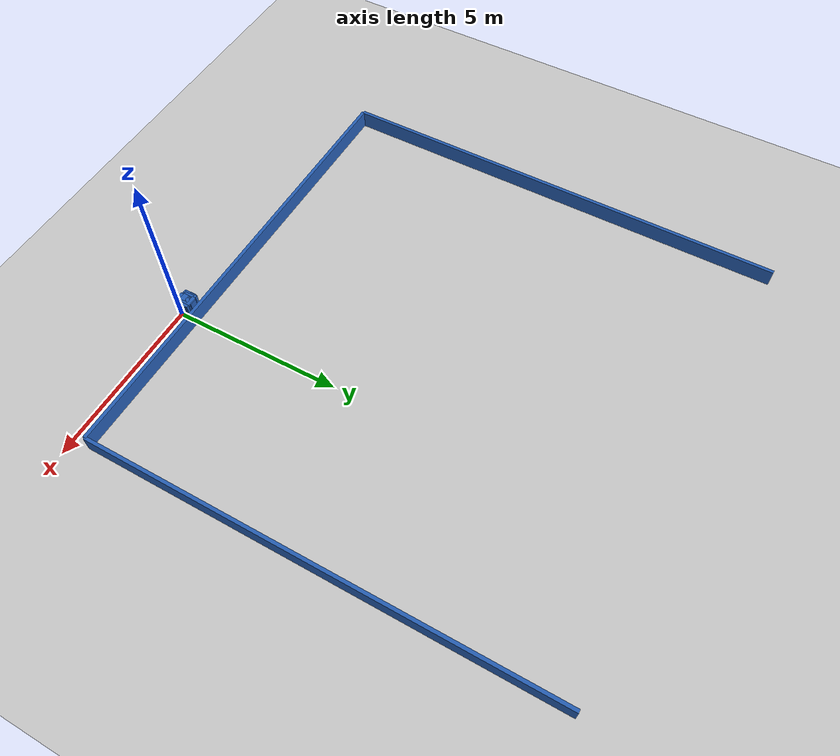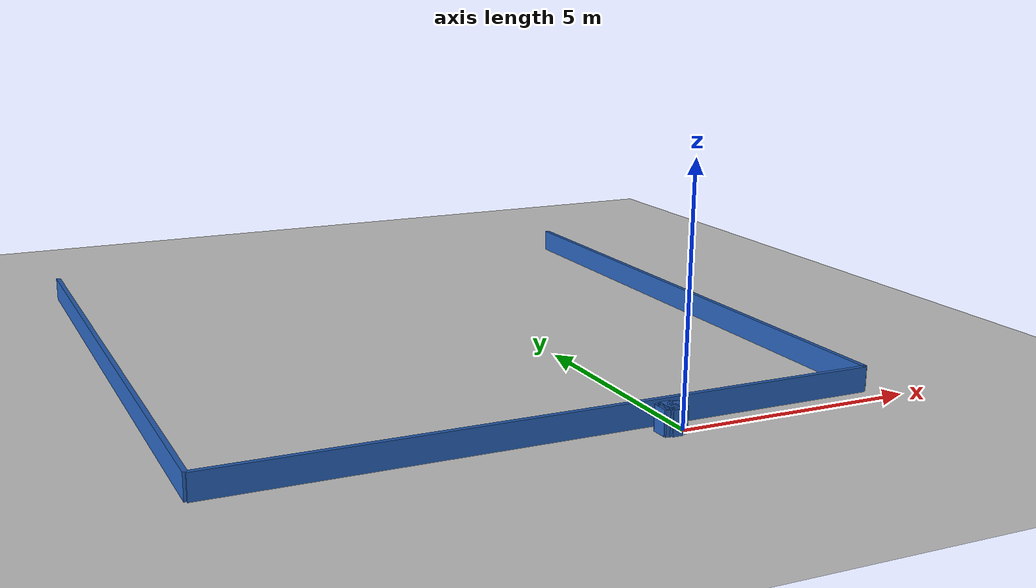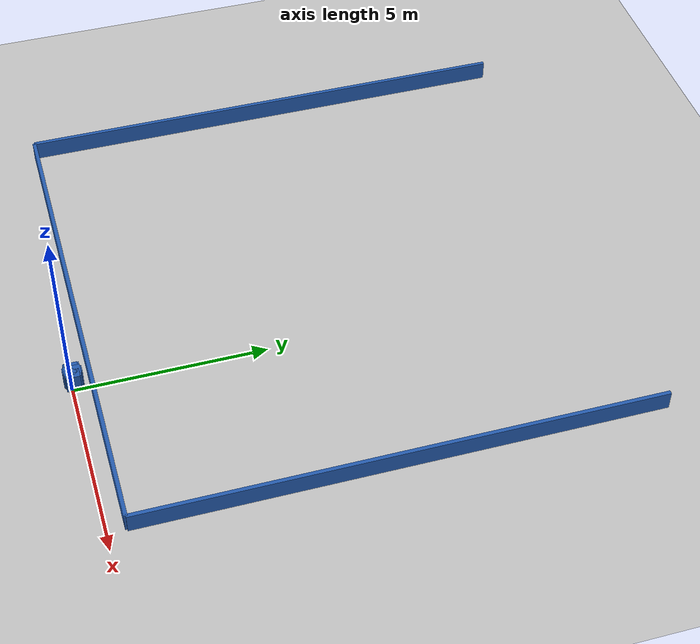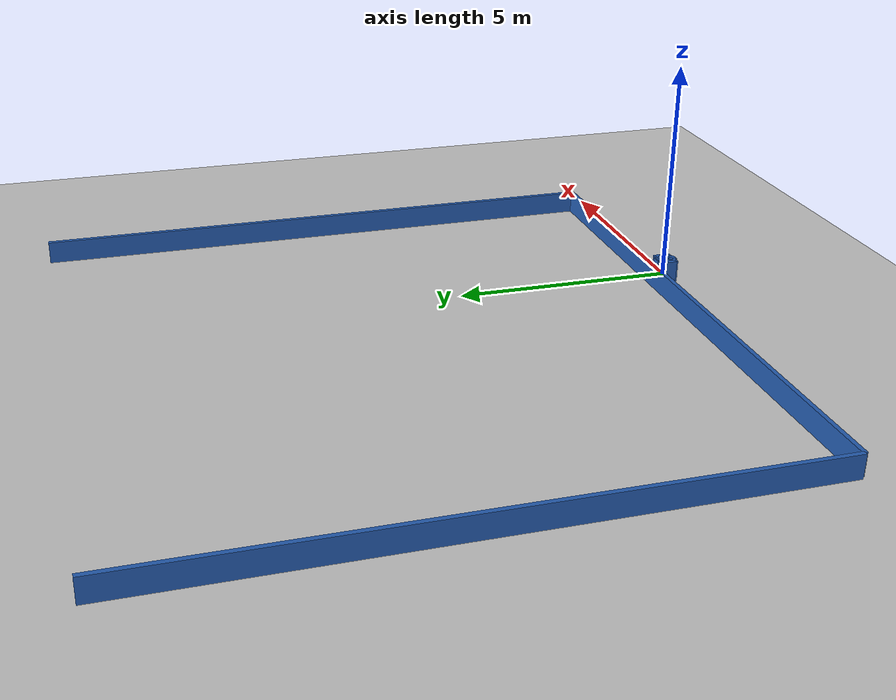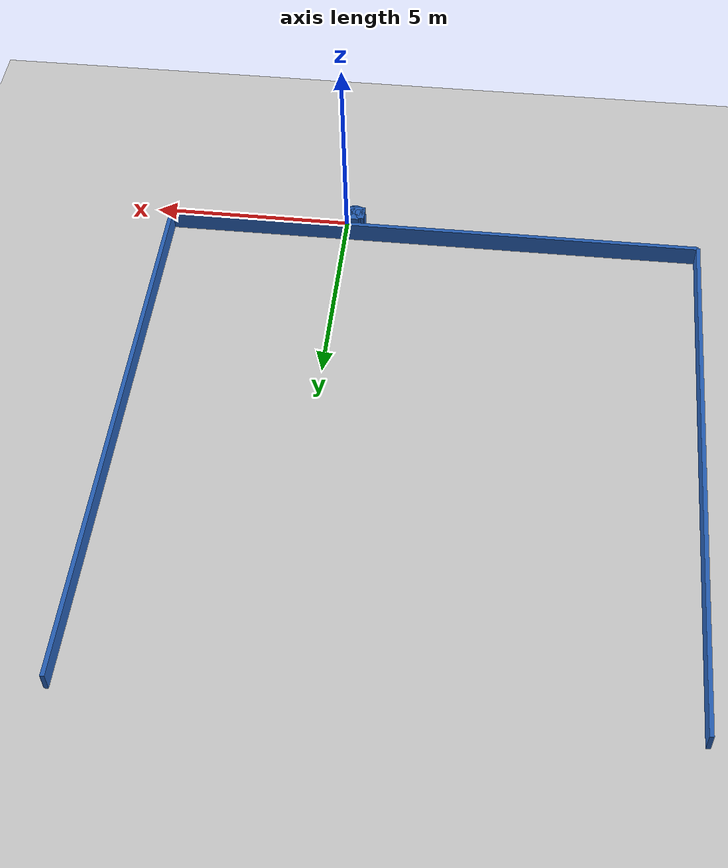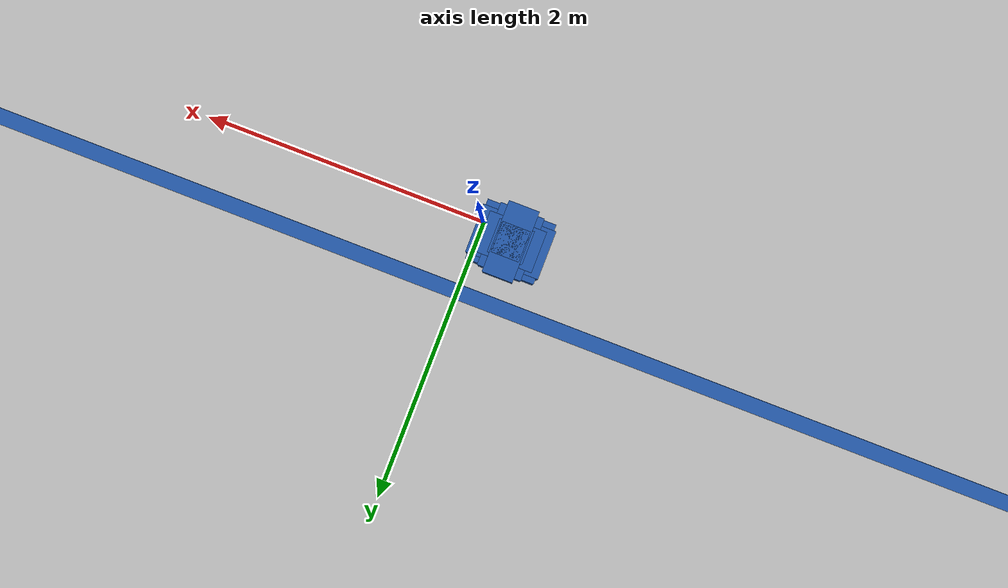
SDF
<?xml version="1.0" ?>
    <sdf version="1.5">
      <world name="default">
        <!-- A global light source -->
        <include>
          <uri>model://sun</uri>
        </include>
        <!-- A ground plane -->
        <include>
          <uri>model://ground_plane</uri>
        </include>

    <model name='libopen_space_final_T2B_118_43'>
      <static>1</static>
      <pose frame=''>-0.225000 0.075000 0.000000 0.000000 0.000000 0.000000</pose>
      <link name='link'>
        <inertial>
          <mass>1</mass>
          <inertia>
            <ixx>0.145833</ixx>
            <ixy>0</ixy>
            <ixz>0</ixz>
            <iyy>0.145833</iyy>
            <iyz>0</iyz>
            <izz>0.125</izz>
          </inertia>
        </inertial>
        <collision name='collision'>
          <geometry>
            <box>
              <size>0.20 0.19 1</size>
            </box>
          </geometry>
          <max_contacts>10</max_contacts>
          <surface>
            <contact>
              <ode/>
            </contact>
            <bounce/>
            <friction>
              <torsional>
                <ode/>
              </torsional>
              <ode/>
            </friction>
          </surface>
        </collision>
        <visual name='visual'>
          <geometry>
            <box>
              <size>0.20 0.19 1</size>
            </box>
          </geometry>
	    <material>
              <ambient>0.152000 0.379000 0.720000 1</ambient>
	      <diffuse>0.152000 0.379000 0.720000 1</diffuse>
          </material>
          <material>
            <script>
              <name>Gazebo/Grey</name>
              <uri>file://media/materials/scripts/gazebo.material</uri>
            </script>
          </material>
        </visual>
        <self_collide>0</self_collide>
        <kinematic>0</kinematic>
        <gravity>1</gravity>
      </link>
      <plugin name='libopen_space_final_T2B_118_43' filename='libopen_space_final_T2B_118_43.so'/>
    </model>

    <model name='libopen_space_final_T2B_141_33'>
      <static>1</static>
      <pose frame=''>-0.225000 0.075000 0.000000 0.000000 0.000000 0.000000</pose>
      <link name='link'>
        <inertial>
          <mass>1</mass>
          <inertia>
            <ixx>0.145833</ixx>
            <ixy>0</ixy>
            <ixz>0</ixz>
            <iyy>0.145833</iyy>
            <iyz>0</iyz>
            <izz>0.125</izz>
          </inertia>
        </inertial>
        <collision name='collision'>
          <geometry>
            <box>
              <size>0.19 0.21 1</size>
            </box>
          </geometry>
          <max_contacts>10</max_contacts>
          <surface>
            <contact>
              <ode/>
            </contact>
            <bounce/>
            <friction>
              <torsional>
                <ode/>
              </torsional>
              <ode/>
            </friction>
          </surface>
        </collision>
        <visual name='visual'>
          <geometry>
            <box>
              <size>0.19 0.21 1</size>
            </box>
          </geometry>
	    <material>
              <ambient>0.152000 0.379000 0.720000 1</ambient>
	      <diffuse>0.152000 0.379000 0.720000 1</diffuse>
          </material>
          <material>
            <script>
              <name>Gazebo/Grey</name>
              <uri>file://media/materials/scripts/gazebo.material</uri>
            </script>
          </material>
        </visual>
        <self_collide>0</self_collide>
        <kinematic>0</kinematic>
        <gravity>1</gravity>
      </link>
      <plugin name='libopen_space_final_T2B_141_33' filename='libopen_space_final_T2B_141_33.so'/>
    </model>

    <model name='libopen_space_final_T2B_123_13'>
      <static>1</static>
      <pose frame=''>-0.225000 0.075000 0.000000 0.000000 0.000000 0.000000</pose>
      <link name='link'>
        <inertial>
          <mass>1</mass>
          <inertia>
            <ixx>0.145833</ixx>
            <ixy>0</ixy>
            <ixz>0</ixz>
            <iyy>0.145833</iyy>
            <iyz>0</iyz>
            <izz>0.125</izz>
          </inertia>
        </inertial>
        <collision name='collision'>
          <geometry>
            <box>
              <size>0.21 0.49 1</size>
            </box>
          </geometry>
          <max_contacts>10</max_contacts>
          <surface>
            <contact>
              <ode/>
            </contact>
            <bounce/>
            <friction>
              <torsional>
                <ode/>
              </torsional>
              <ode/>
            </friction>
          </surface>
        </collision>
        <visual name='visual'>
          <geometry>
            <box>
              <size>0.21 0.49 1</size>
            </box>
          </geometry>
	    <material>
              <ambient>0.152000 0.379000 0.720000 1</ambient>
	      <diffuse>0.152000 0.379000 0.720000 1</diffuse>
          </material>
          <material>
            <script>
              <name>Gazebo/Grey</name>
              <uri>file://media/materials/scripts/gazebo.material</uri>
            </script>
          </material>
        </visual>
        <self_collide>0</self_collide>
        <kinematic>0</kinematic>
        <gravity>1</gravity>
      </link>
      <plugin name='libopen_space_final_T2B_123_13' filename='libopen_space_final_T2B_123_13.so'/>
    </model>

    <model name='libopen_space_final_T2B_67_46'>
      <static>1</static>
      <pose frame=''>-0.225000 0.075000 0.000000 0.000000 0.000000 0.000000</pose>
      <link name='link'>
        <inertial>
          <mass>1</mass>
          <inertia>
            <ixx>0.145833</ixx>
            <ixy>0</ixy>
            <ixz>0</ixz>
            <iyy>0.145833</iyy>
            <iyz>0</iyz>
            <izz>0.125</izz>
          </inertia>
        </inertial>
        <collision name='collision'>
          <geometry>
            <box>
              <size>0.24 0.23 1</size>
            </box>
          </geometry>
          <max_contacts>10</max_contacts>
          <surface>
            <contact>
              <ode/>
            </contact>
            <bounce/>
            <friction>
              <torsional>
                <ode/>
              </torsional>
              <ode/>
            </friction>
          </surface>
        </collision>
        <visual name='visual'>
          <geometry>
            <box>
              <size>0.24 0.23 1</size>
            </box>
          </geometry>
	    <material>
              <ambient>0.152000 0.379000 0.720000 1</ambient>
	      <diffuse>0.152000 0.379000 0.720000 1</diffuse>
          </material>
          <material>
            <script>
              <name>Gazebo/Grey</name>
              <uri>file://media/materials/scripts/gazebo.material</uri>
            </script>
          </material>
        </visual>
        <self_collide>0</self_collide>
        <kinematic>0</kinematic>
        <gravity>1</gravity>
      </link>
      <plugin name='libopen_space_final_T2B_67_46' filename='libopen_space_final_T2B_67_46.so'/>
    </model>

    <model name='libopen_space_final_T2B_105_8'>
      <static>1</static>
      <pose frame=''>-0.225000 0.075000 0.000000 0.000000 0.000000 0.000000</pose>
      <link name='link'>
        <inertial>
          <mass>1</mass>
          <inertia>
            <ixx>0.145833</ixx>
            <ixy>0</ixy>
            <ixz>0</ixz>
            <iyy>0.145833</iyy>
            <iyz>0</iyz>
            <izz>0.125</izz>
          </inertia>
        </inertial>
        <collision name='collision'>
          <geometry>
            <box>
              <size>0.39 0.28 1</size>
            </box>
          </geometry>
          <max_contacts>10</max_contacts>
          <surface>
            <contact>
              <ode/>
            </contact>
            <bounce/>
            <friction>
              <torsional>
                <ode/>
              </torsional>
              <ode/>
            </friction>
          </surface>
        </collision>
        <visual name='visual'>
          <geometry>
            <box>
              <size>0.39 0.28 1</size>
            </box>
          </geometry>
	    <material>
              <ambient>0.152000 0.379000 0.720000 1</ambient>
	      <diffuse>0.152000 0.379000 0.720000 1</diffuse>
          </material>
          <material>
            <script>
              <name>Gazebo/Grey</name>
              <uri>file://media/materials/scripts/gazebo.material</uri>
            </script>
          </material>
        </visual>
        <self_collide>0</self_collide>
        <kinematic>0</kinematic>
        <gravity>1</gravity>
      </link>
      <plugin name='libopen_space_final_T2B_105_8' filename='libopen_space_final_T2B_105_8.so'/>
    </model>

    <model name='libopen_space_final_T2B_84_5'>
      <static>1</static>
      <pose frame=''>-0.225000 0.075000 0.000000 0.000000 0.000000 0.000000</pose>
      <link name='link'>
        <inertial>
          <mass>1</mass>
          <inertia>
            <ixx>0.145833</ixx>
            <ixy>0</ixy>
            <ixz>0</ixz>
            <iyy>0.145833</iyy>
            <iyz>0</iyz>
            <izz>0.125</izz>
          </inertia>
        </inertial>
        <collision name='collision'>
          <geometry>
            <box>
              <size>0.30 0.43 1</size>
            </box>
          </geometry>
          <max_contacts>10</max_contacts>
          <surface>
            <contact>
              <ode/>
            </contact>
            <bounce/>
            <friction>
              <torsional>
                <ode/>
              </torsional>
              <ode/>
            </friction>
          </surface>
        </collision>
        <visual name='visual'>
          <geometry>
            <box>
              <size>0.30 0.43 1</size>
            </box>
          </geometry>
	    <material>
              <ambient>0.152000 0.379000 0.720000 1</ambient>
	      <diffuse>0.152000 0.379000 0.720000 1</diffuse>
          </material>
          <material>
            <script>
              <name>Gazebo/Grey</name>
              <uri>file://media/materials/scripts/gazebo.material</uri>
            </script>
          </material>
        </visual>
        <self_collide>0</self_collide>
        <kinematic>0</kinematic>
        <gravity>1</gravity>
      </link>
      <plugin name='libopen_space_final_T2B_84_5' filename='libopen_space_final_T2B_84_5.so'/>
    </model>

    <model name='libopen_space_final_T2B_94_31'>
      <static>1</static>
      <pose frame=''>-0.225000 0.075000 0.000000 0.000000 0.000000 0.000000</pose>
      <link name='link'>
        <inertial>
          <mass>1</mass>
          <inertia>
            <ixx>0.145833</ixx>
            <ixy>0</ixy>
            <ixz>0</ixz>
            <iyy>0.145833</iyy>
            <iyz>0</iyz>
            <izz>0.125</izz>
          </inertia>
        </inertial>
        <collision name='collision'>
          <geometry>
            <box>
              <size>0.15 0.31 1</size>
            </box>
          </geometry>
          <max_contacts>10</max_contacts>
          <surface>
            <contact>
              <ode/>
            </contact>
            <bounce/>
            <friction>
              <torsional>
                <ode/>
              </torsional>
              <ode/>
            </friction>
          </surface>
        </collision>
        <visual name='visual'>
          <geometry>
            <box>
              <size>0.15 0.31 1</size>
            </box>
          </geometry>
	    <material>
              <ambient>0.152000 0.379000 0.720000 1</ambient>
	      <diffuse>0.152000 0.379000 0.720000 1</diffuse>
          </material>
          <material>
            <script>
              <name>Gazebo/Grey</name>
              <uri>file://media/materials/scripts/gazebo.material</uri>
            </script>
          </material>
        </visual>
        <self_collide>0</self_collide>
        <kinematic>0</kinematic>
        <gravity>1</gravity>
      </link>
      <plugin name='libopen_space_final_T2B_94_31' filename='libopen_space_final_T2B_94_31.so'/>
    </model>

    <model name='libopen_space_final_T2B_90_15'>
      <static>1</static>
      <pose frame=''>-0.225000 0.075000 0.000000 0.000000 0.000000 0.000000</pose>
      <link name='link'>
        <inertial>
          <mass>1</mass>
          <inertia>
            <ixx>0.145833</ixx>
            <ixy>0</ixy>
            <ixz>0</ixz>
            <iyy>0.145833</iyy>
            <iyz>0</iyz>
            <izz>0.125</izz>
          </inertia>
        </inertial>
        <collision name='collision'>
          <geometry>
            <box>
              <size>0.12 0.20 1</size>
            </box>
          </geometry>
          <max_contacts>10</max_contacts>
          <surface>
            <contact>
              <ode/>
            </contact>
            <bounce/>
            <friction>
              <torsional>
                <ode/>
              </torsional>
              <ode/>
            </friction>
          </surface>
        </collision>
        <visual name='visual'>
          <geometry>
            <box>
              <size>0.12 0.20 1</size>
            </box>
          </geometry>
	    <material>
              <ambient>0.152000 0.379000 0.720000 1</ambient>
	      <diffuse>0.152000 0.379000 0.720000 1</diffuse>
          </material>
          <material>
            <script>
              <name>Gazebo/Grey</name>
              <uri>file://media/materials/scripts/gazebo.material</uri>
            </script>
          </material>
        </visual>
        <self_collide>0</self_collide>
        <kinematic>0</kinematic>
        <gravity>1</gravity>
      </link>
      <plugin name='libopen_space_final_T2B_90_15' filename='libopen_space_final_T2B_90_15.so'/>
    </model>

    <model name='libopen_space_final_T2B_112_98'>
      <static>1</static>
      <pose frame=''>-0.225000 0.075000 0.000000 0.000000 0.000000 0.000000</pose>
      <link name='link'>
        <inertial>
          <mass>1</mass>
          <inertia>
            <ixx>0.145833</ixx>
            <ixy>0</ixy>
            <ixz>0</ixz>
            <iyy>0.145833</iyy>
            <iyz>0</iyz>
            <izz>0.125</izz>
          </inertia>
        </inertial>
        <collision name='collision'>
          <geometry>
            <box>
              <size>0.20 0.25 1</size>
            </box>
          </geometry>
          <max_contacts>10</max_contacts>
          <surface>
            <contact>
              <ode/>
            </contact>
            <bounce/>
            <friction>
              <torsional>
                <ode/>
              </torsional>
              <ode/>
            </friction>
          </surface>
        </collision>
        <visual name='visual'>
          <geometry>
            <box>
              <size>0.20 0.25 1</size>
            </box>
          </geometry>
	    <material>
              <ambient>0.152000 0.379000 0.720000 1</ambient>
	      <diffuse>0.152000 0.379000 0.720000 1</diffuse>
          </material>
          <material>
            <script>
              <name>Gazebo/Grey</name>
              <uri>file://media/materials/scripts/gazebo.material</uri>
            </script>
          </material>
        </visual>
        <self_collide>0</self_collide>
        <kinematic>0</kinematic>
        <gravity>1</gravity>
      </link>
      <plugin name='libopen_space_final_T2B_112_98' filename='libopen_space_final_T2B_112_98.so'/>
    </model>

    <model name='libopen_space_final_T2B_52_49'>
      <static>1</static>
      <pose frame=''>-0.225000 0.075000 0.000000 0.000000 0.000000 0.000000</pose>
      <link name='link'>
        <inertial>
          <mass>1</mass>
          <inertia>
            <ixx>0.145833</ixx>
            <ixy>0</ixy>
            <ixz>0</ixz>
            <iyy>0.145833</iyy>
            <iyz>0</iyz>
            <izz>0.125</izz>
          </inertia>
        </inertial>
        <collision name='collision'>
          <geometry>
            <box>
              <size>0.23 0.23 1</size>
            </box>
          </geometry>
          <max_contacts>10</max_contacts>
          <surface>
            <contact>
              <ode/>
            </contact>
            <bounce/>
            <friction>
              <torsional>
                <ode/>
              </torsional>
              <ode/>
            </friction>
          </surface>
        </collision>
        <visual name='visual'>
          <geometry>
            <box>
              <size>0.23 0.23 1</size>
            </box>
          </geometry>
	    <material>
              <ambient>0.152000 0.379000 0.720000 1</ambient>
	      <diffuse>0.152000 0.379000 0.720000 1</diffuse>
          </material>
          <material>
            <script>
              <name>Gazebo/Grey</name>
              <uri>file://media/materials/scripts/gazebo.material</uri>
            </script>
          </material>
        </visual>
        <self_collide>0</self_collide>
        <kinematic>0</kinematic>
        <gravity>1</gravity>
      </link>
      <plugin name='libopen_space_final_T2B_52_49' filename='libopen_space_final_T2B_52_49.so'/>
    </model>

    <model name='libopen_space_final_T2B_148_40'>
      <static>1</static>
      <pose frame=''>-0.225000 0.075000 0.000000 0.000000 0.000000 0.000000</pose>
      <link name='link'>
        <inertial>
          <mass>1</mass>
          <inertia>
            <ixx>0.145833</ixx>
            <ixy>0</ixy>
            <ixz>0</ixz>
            <iyy>0.145833</iyy>
            <iyz>0</iyz>
            <izz>0.125</izz>
          </inertia>
        </inertial>
        <collision name='collision'>
          <geometry>
            <box>
              <size>0.50 0.33 1</size>
            </box>
          </geometry>
          <max_contacts>10</max_contacts>
          <surface>
            <contact>
              <ode/>
            </contact>
            <bounce/>
            <friction>
              <torsional>
                <ode/>
              </torsional>
              <ode/>
            </friction>
          </surface>
        </collision>
        <visual name='visual'>
          <geometry>
            <box>
              <size>0.50 0.33 1</size>
            </box>
          </geometry>
	    <material>
              <ambient>0.152000 0.379000 0.720000 1</ambient>
	      <diffuse>0.152000 0.379000 0.720000 1</diffuse>
          </material>
          <material>
            <script>
              <name>Gazebo/Grey</name>
              <uri>file://media/materials/scripts/gazebo.material</uri>
            </script>
          </material>
        </visual>
        <self_collide>0</self_collide>
        <kinematic>0</kinematic>
        <gravity>1</gravity>
      </link>
      <plugin name='libopen_space_final_T2B_148_40' filename='libopen_space_final_T2B_148_40.so'/>
    </model>

    <model name='libopen_space_final_T2B_100_36'>
      <static>1</static>
      <pose frame=''>-0.225000 0.075000 0.000000 0.000000 0.000000 0.000000</pose>
      <link name='link'>
        <inertial>
          <mass>1</mass>
          <inertia>
            <ixx>0.145833</ixx>
            <ixy>0</ixy>
            <ixz>0</ixz>
            <iyy>0.145833</iyy>
            <iyz>0</iyz>
            <izz>0.125</izz>
          </inertia>
        </inertial>
        <collision name='collision'>
          <geometry>
            <box>
              <size>0.25 0.31 1</size>
            </box>
          </geometry>
          <max_contacts>10</max_contacts>
          <surface>
            <contact>
              <ode/>
            </contact>
            <bounce/>
            <friction>
              <torsional>
                <ode/>
              </torsional>
              <ode/>
            </friction>
          </surface>
        </collision>
        <visual name='visual'>
          <geometry>
            <box>
              <size>0.25 0.31 1</size>
            </box>
          </geometry>
	    <material>
              <ambient>0.152000 0.379000 0.720000 1</ambient>
	      <diffuse>0.152000 0.379000 0.720000 1</diffuse>
          </material>
          <material>
            <script>
              <name>Gazebo/Grey</name>
              <uri>file://media/materials/scripts/gazebo.material</uri>
            </script>
          </material>
        </visual>
        <self_collide>0</self_collide>
        <kinematic>0</kinematic>
        <gravity>1</gravity>
      </link>
      <plugin name='libopen_space_final_T2B_100_36' filename='libopen_space_final_T2B_100_36.so'/>
    </model>

    <model name='libopen_space_final_T2B_83_17'>
      <static>1</static>
      <pose frame=''>-0.225000 0.075000 0.000000 0.000000 0.000000 0.000000</pose>
      <link name='link'>
        <inertial>
          <mass>1</mass>
          <inertia>
            <ixx>0.145833</ixx>
            <ixy>0</ixy>
            <ixz>0</ixz>
            <iyy>0.145833</iyy>
            <iyz>0</iyz>
            <izz>0.125</izz>
          </inertia>
        </inertial>
        <collision name='collision'>
          <geometry>
            <box>
              <size>0.47 0.41 1</size>
            </box>
          </geometry>
          <max_contacts>10</max_contacts>
          <surface>
            <contact>
              <ode/>
            </contact>
            <bounce/>
            <friction>
              <torsional>
                <ode/>
              </torsional>
              <ode/>
            </friction>
          </surface>
        </collision>
        <visual name='visual'>
          <geometry>
            <box>
              <size>0.47 0.41 1</size>
            </box>
          </geometry>
	    <material>
              <ambient>0.152000 0.379000 0.720000 1</ambient>
	      <diffuse>0.152000 0.379000 0.720000 1</diffuse>
          </material>
          <material>
            <script>
              <name>Gazebo/Grey</name>
              <uri>file://media/materials/scripts/gazebo.material</uri>
            </script>
          </material>
        </visual>
        <self_collide>0</self_collide>
        <kinematic>0</kinematic>
        <gravity>1</gravity>
      </link>
      <plugin name='libopen_space_final_T2B_83_17' filename='libopen_space_final_T2B_83_17.so'/>
    </model>

        <model name='bottom_wall'>
          <static>1</static>
          <pose frame=''>-2.25 0.5 0.000000 0.000000 0.000000 1.57079632</pose>
          <link name='link'>
            <inertial>
            <mass>1</mass>
            <inertia>
              <ixx>0.145833</ixx>
              <ixy>0</ixy>
              <ixz>0</ixz>
              <iyy>0.145833</iyy>
              <iyz>0</iyz>
              <izz>0.125</izz>
            </inertia>
            </inertial>
            <collision name='collision'>
            <geometry>
              <box>
              <size>0.1 13.5 1</size>
              </box>
            </geometry>
            <max_contacts>10</max_contacts>
            <surface>
              <contact>
              <ode/>
              </contact>
              <bounce/>
              <friction>
              <torsional>
                <ode/>
              </torsional>
              <ode/>
              </friction>
            </surface>
            </collision>
            <visual name='visual'>
            <geometry>
              <box>
              <size>0.1 13.5 1</size>
              </box>
            </geometry>
            <material>
              <ambient>0.152000 0.379000 0.720000 1</ambient>
            <diffuse>0.152000 0.379000 0.720000 1</diffuse>
            </material>
            <material>
              <script>
              <name>Gazebo/Grey</name>
              <uri>file://media/materials/scripts/gazebo.material</uri>
              </script>
            </material>
            </visual>
            <self_collide>0</self_collide>
            <kinematic>0</kinematic>
            <gravity>1</gravity>
          </link>
        </model>

        <model name='left_wall'>
          <static>1</static>
          <pose frame=''>-9 7.25 0.000000 0.000000 0.000000 0.000000</pose>
          <link name='link'>
            <inertial>
            <mass>1</mass>
            <inertia>
              <ixx>0.145833</ixx>
              <ixy>0</ixy>
              <ixz>0</ixz>
              <iyy>0.145833</iyy>
              <iyz>0</iyz>
              <izz>0.125</izz>
            </inertia>
            </inertial>
            <collision name='collision'>
            <geometry>
              <box>
              <size>0.1 13.5 1</size>
              </box>
            </geometry>
            <max_contacts>10</max_contacts>
            <surface>
              <contact>
              <ode/>
              </contact>
              <bounce/>
              <friction>
              <torsional>
                <ode/>
              </torsional>
              <ode/>
              </friction>
            </surface>
            </collision>
            <visual name='visual'>
            <geometry>
              <box>
              <size>0.1 13.5 1</size>
              </box>
            </geometry>
            <material>
              <ambient>0.152000 0.379000 0.720000 1</ambient>
            <diffuse>0.152000 0.379000 0.720000 1</diffuse>
            </material>
            <material>
              <script>
              <name>Gazebo/Grey</name>
              <uri>file://media/materials/scripts/gazebo.material</uri>
              </script>
            </material>
            </visual>
            <self_collide>0</self_collide>
            <kinematic>0</kinematic>
            <gravity>1</gravity>
          </link>
        </model>

        <model name='right_wall'>
          <static>1</static>
          <pose frame=''>4.5 7.25 0.000000 0.000000 0.000000 0.000000</pose>
          <link name='link'>
            <inertial>
            <mass>1</mass>
            <inertia>
              <ixx>0.145833</ixx>
              <ixy>0</ixy>
              <ixz>0</ixz>
              <iyy>0.145833</iyy>
              <iyz>0</iyz>
              <izz>0.125</izz>
            </inertia>
            </inertial>
            <collision name='collision'>
            <geometry>
              <box>
              <size>0.1 13.5 1</size>
              </box>
            </geometry>
            <max_contacts>10</max_contacts>
            <surface>
              <contact>
              <ode/>
              </contact>
              <bounce/>
              <friction>
              <torsional>
                <ode/>
              </torsional>
              <ode/>
              </friction>
            </surface>
            </collision>
            <visual name='visual'>
            <geometry>
              <box>
              <size>0.1 13.5 1</size>
              </box>
            </geometry>
            <material>
              <ambient>0.152000 0.379000 0.720000 1</ambient>
            <diffuse>0.152000 0.379000 0.720000 1</diffuse>
            </material>
            <material>
              <script>
              <name>Gazebo/Grey</name>
              <uri>file://media/materials/scripts/gazebo.material</uri>
              </script>
            </material>
            </visual>
            <self_collide>0</self_collide>
            <kinematic>0</kinematic>
            <gravity>1</gravity>
          </link>
        </model>

      </world>
    </sdf>"
